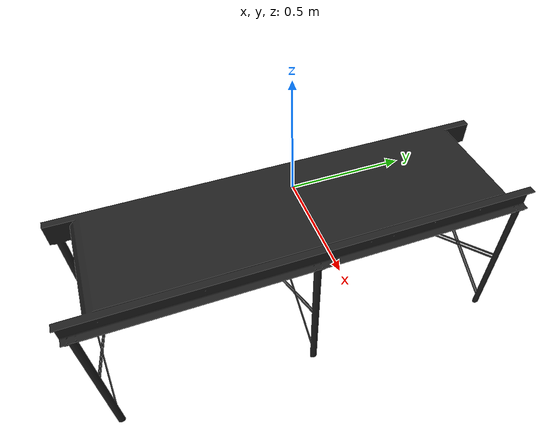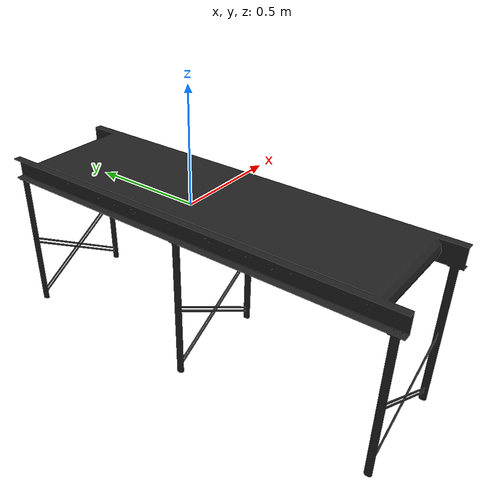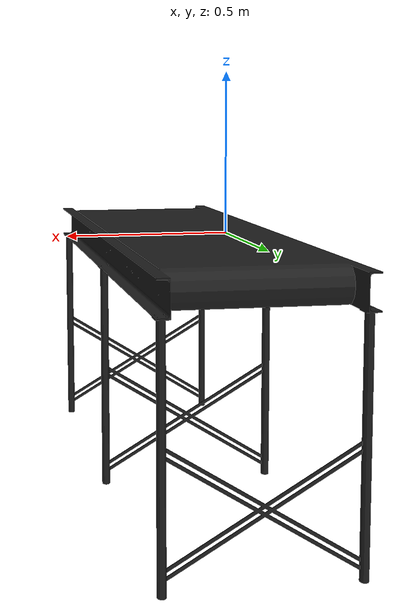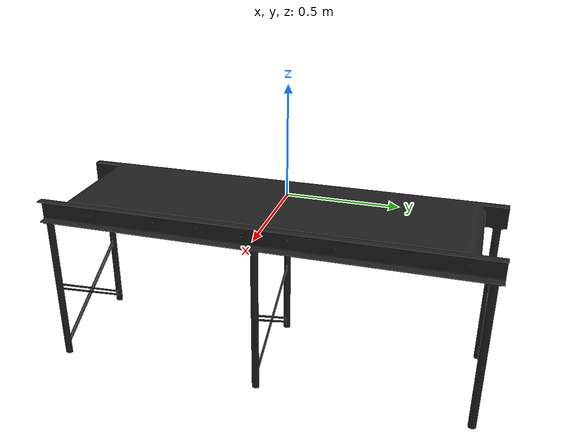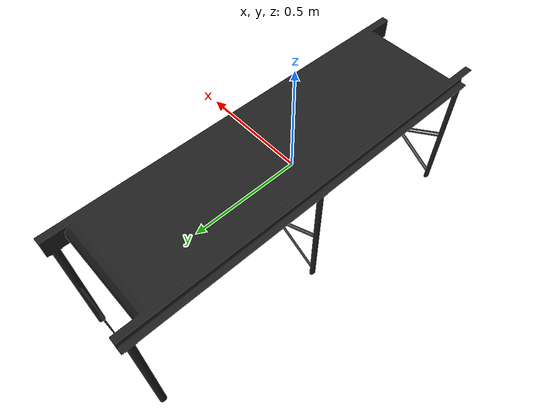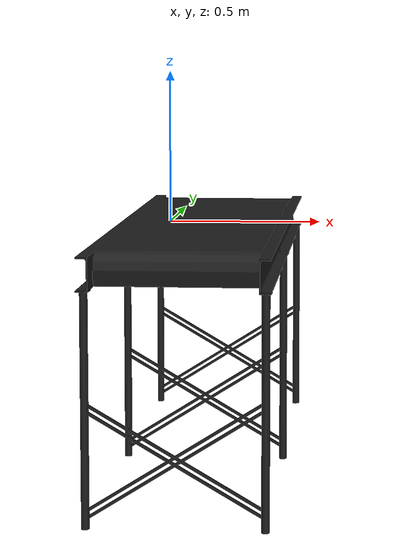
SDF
<?xml version='1.0'?>
<sdf version='1.6'>
  <model name='BANDA'>
    <link name='link_1'>
      <pose frame=''>0 0 0 0 -0 0</pose>
      <inertial>
        <mass>161</mass>
        <inertia>
          <ixx>11.456</ixx>
          <ixy>0</ixy>
          <ixz>0</ixz>
          <iyy>18.692</iyy>
          <iyz>0</iyz>
          <izz>10.041</izz>
        </inertia>
        <pose frame=''>0 0 0 0 -0 0</pose>
      </inertial>
      <gravity>1</gravity>
      <self_collide>0</self_collide>
      <kinematic>0</kinematic>
      <visual name='visual'>
        <pose frame=''>0 0 0 0 -0 0</pose>
        <geometry>
          <mesh>
            <uri>/home/pt/baxter_ws/src/baxter_simulator/baxter_sim_examples/models/BANDA_FINAL/meshes/base_link.STL</uri>
            <scale>0.7 1 1</scale>
          </mesh>
        </geometry>
        <material>
          <lighting>1</lighting>
          <script>
            <uri>file://media/materials/scripts/gazebo.material</uri>
            <name>Gazebo/Black</name>
          </script>
          <ambient>0.3 0.3 0.3 1</ambient>
          <diffuse>0.7 0.7 0.7 1</diffuse>
          <specular>0.01 0.01 0.01 1</specular>
          <emissive>0 0 0 1</emissive>
          <shader type='vertex'>
            <normal_map>__default__</normal_map>
          </shader>
        </material>
        <cast_shadows>1</cast_shadows>
        <transparency>0</transparency>
      </visual>
      <collision name='collision'>
        <laser_retro>0</laser_retro>
        <max_contacts>10</max_contacts>
        <pose frame=''>0 0 0 0 -0 0</pose>
        <geometry>
          <mesh>
            <uri>/home/pt/baxter_ws/src/baxter_simulator/baxter_sim_examples/models/BANDA_FINAL/meshes/base_link.STL</uri>
          </mesh>
        </geometry>
        <surface>
          <friction>
            <ode>
              <mu>1</mu>
              <mu2>1</mu2>
              <fdir1>0 0 0</fdir1>
              <slip1>0</slip1>
              <slip2>0</slip2>
            </ode>
            <torsional>
              <coefficient>1</coefficient>
              <patch_radius>0</patch_radius>
              <surface_radius>0</surface_radius>
              <use_patch_radius>1</use_patch_radius>
              <ode>
                <slip>0</slip>
              </ode>
            </torsional>
          </friction>
          <bounce>
            <restitution_coefficient>0</restitution_coefficient>
            <threshold>1e+06</threshold>
          </bounce>
          <contact>
            <collide_without_contact>0</collide_without_contact>
            <collide_without_contact_bitmask>1</collide_without_contact_bitmask>
            <collide_bitmask>1</collide_bitmask>
            <ode>
              <soft_cfm>0</soft_cfm>
              <soft_erp>0.2</soft_erp>
              <kp>1e+13</kp>
              <kd>1</kd>
              <max_vel>0.01</max_vel>
              <min_depth>0</min_depth>
            </ode>
            <bullet>
              <split_impulse>1</split_impulse>
              <split_impulse_penetration_threshold>-0.01</split_impulse_penetration_threshold>
              <soft_cfm>0</soft_cfm>
              <soft_erp>0.2</soft_erp>
              <kp>1e+13</kp>
              <kd>1</kd>
            </bullet>
          </contact>
        </surface>
      </collision>
    </link>
    <static>1</static>
    <allow_auto_disable>1</allow_auto_disable>
  </model>
</sdf>
